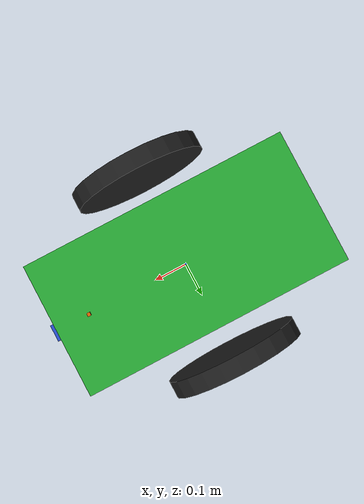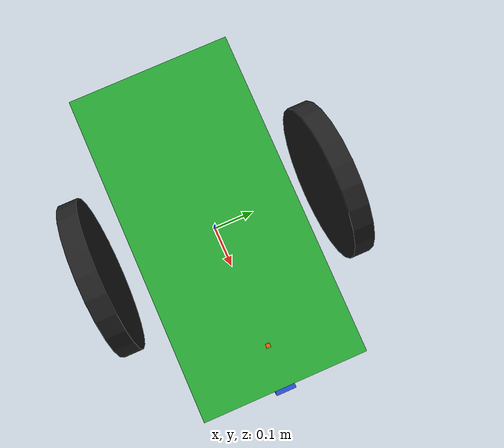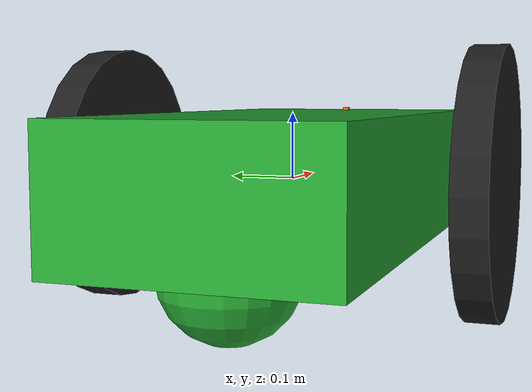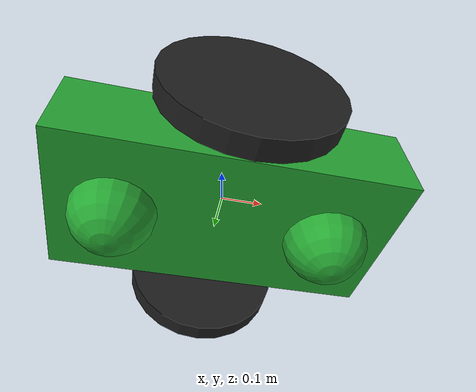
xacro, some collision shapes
<?xml version='1.0'?>

<robot name="my_robot" xmlns:xacro="http://www.ros.org/wiki/xacro">
  <xacro:include filename="$(find my_robot)/urdf/my_robot.gazebo" />
  <link name="robot_footprint"></link>

  <joint name="robot_footprint_joint" type="fixed">
    <origin xyz="0 0 0" rpy="0 0 0" />
    <parent link="robot_footprint"/>
    <child link="chassis" />
  </joint>

  <link name='chassis'>
    <pose>0 0 0.1 0 0 0</pose>

    <inertial>
      <mass value="30.0"/>
      <origin xyz="0.0 0 0" rpy=" 0 0 0"/>
      <inertia
          ixx="0.1" ixy="0" ixz="0"
          iyy="0.1" iyz="0"
          izz="0.1"
      />
    </inertial>

    <collision name='collision'>
      <origin xyz="0 0 0" rpy=" 0 0 0"/>
      <geometry>
        <box size=".8 .4 .2"/>
      </geometry>
    </collision>

    <visual name='chassis_visual'>
      <origin xyz="0 0 0" rpy=" 0 0 0"/>
      <geometry>
        <box size=".8 .4 .2"/>
      </geometry>
    </visual>

    <collision name='back_caster_collision'>
      <origin xyz="-0.25 0 -0.1" rpy=" 0 0 0"/>
      <geometry>
        <sphere radius="0.0998"/>
      </geometry>
    </collision>

    <visual name='back_caster_visual'>
      <origin xyz="-0.25 0 -0.1" rpy=" 0 0 0"/>
      <geometry>
        <sphere radius="0.1"/>
      </geometry>
    </visual>

    <collision name='front_caster_collision'>
      <origin xyz="0.25 0 -0.1" rpy=" 0 0 0"/>
      <geometry>
        <sphere radius="0.0998"/>
      </geometry>
    </collision>

    <visual name='front_caster_visual'>
      <origin xyz="0.25 0 -0.1" rpy=" 0 0 0"/>
      <geometry>
        <sphere radius="0.1"/>
      </geometry>
    </visual>

  </link>

  <link name='left_wheel'>
    <pose>0 0 0.8 0 0 0</pose>

    <inertial>
      <mass value="5"/>
      <origin xyz="0.0 0 0" rpy=" 0 0 0"/>
      <inertia
          ixx="0.1" ixy="0" ixz="0"
          iyy="0.1" iyz="0"
          izz="0.1"
      />
    </inertial>

    <collision name='collision'>
      <origin xyz="0 0 0" rpy=" 0 1.5707 1.5707"/>
      <geometry>
        <cylinder radius="0.2" length="0.05"/>
      </geometry>
    </collision>

    <visual name='left_wheel_visual'>
      <origin xyz="0 0 0" rpy=" 0 1.5707 1.5707"/>
      <geometry>
        <cylinder radius="0.2" length="0.05"/>
      </geometry>
    </visual>

  </link>

  <joint type="continuous" name="left_wheel_hinge">
    <origin xyz="0 0.30 0" rpy="0 0 0"/>
    <child link="left_wheel"/>
    <parent link="chassis"/>
    <axis xyz="0 1 0" rpy="0 0 0"/>
    <limit effort="10000" velocity="1000"/>
    <dynamics damping="1.0" friction="1.0"/>
  </joint>

  <link name='right_wheel'>
    <pose>0 0 0.8 0 0 0</pose>

    <inertial>
      <mass value="5"/>
      <origin xyz="0.0 0 0" rpy=" 0 0 0"/>
      <inertia
          ixx="0.1" ixy="0" ixz="0"
          iyy="0.1" iyz="0"
          izz="0.1"
      />
    </inertial>

    <collision name='collision'>
      <origin xyz="0 0 0" rpy=" 0 1.5707 1.5707"/>
      <geometry>
        <cylinder radius="0.2" length="0.05"/>
      </geometry>
    </collision>

    <visual name='right_wheel_visual'>
      <origin xyz="0 0 0" rpy=" 0 1.5707 1.5707"/>
      <geometry>
        <cylinder radius="0.2" length="0.05"/>
      </geometry>
    </visual>

  </link>

  <joint type="continuous" name="right_wheel_hinge">
    <origin xyz="0 -0.30 0" rpy="0 0 0"/>
    <child link="right_wheel"/>
    <parent link="chassis"/>
    <axis xyz="0 1 0" rpy="0 0 0"/>
    <limit effort="10000" velocity="1000"/>
    <dynamics damping="1.0" friction="1.0"/>
  </joint>

  <link name='camera'>
    <pose>0 0 0 0 0 0</pose>

    <inertial>
      <mass value="0.1"/>
      <origin xyz="0.0 0 0" rpy=" 0 0 0"/>
      <box_inertia m="0.1" x="0.05" y="0.05" z="0.05"/>
      <inertia
          ixx="1e-6" ixy="0" ixz="0"
          iyy="1e-6" iyz="0"
          izz="1e-6"
      />
    </inertial>

    <collision name='collision'>
      <origin xyz="0 0 0" rpy=" 0 0 0"/>
      <geometry>
        <box size=".05 .05 .05"/>
      </geometry>
    </collision>

    <visual name='camera_visual'>
      <origin xyz="0 0 0" rpy=" 0 0 0"/>
      <geometry>
        <box size=".05 .05 .05"/>
      </geometry>
    </visual>

  </link>

  <joint type="fixed" name="camera_joint">
    <origin xyz="0.4 0 0" rpy="0 0 0"/>
    <child link="camera"/>
    <parent link="chassis"/>
    <axis xyz="0 1 0" rpy="0 0 0"/>
  </joint>

  <!-- Lidar -->
  <link name='hokuyo'>
    <pose>0 0 0 0 0 0</pose>

    <inertial>
      <mass value="1e-5"/>
      <origin xyz="0.0 0 0" rpy=" 0 0 0"/>
      <inertia
          ixx="1e-6" ixy="0" ixz="0"
          iyy="1e-6" iyz="0"
          izz="1e-6"
      />
    </inertial>

    <collision name='collision'>
      <origin xyz="0 0 0" rpy=" 0 0 0"/>
      <geometry>
        <box size=".01 .01 .01"/>
      </geometry>
    </collision>

    <visual name='hokuyo_visual'>
      <origin xyz="0 0 0" rpy=" 0 0 0"/>
      <geometry>
        <mesh filename="package://my_robot/meshes/hokuyo.dae"/>
      </geometry>
    </visual>

  </link>

  <joint type="fixed" name="hokuyo_joint">
    <origin xyz="0.30 0 .1" rpy="0 0 0"/>
    <child link="hokuyo"/>
    <parent link="chassis"/>
    <axis xyz="0 1 0" rpy="0 0 0"/>
  </joint>

  <!-- added to comply with RTAB package -->
  <joint name="camera_optical_joint" type="fixed">
    <origin xyz="0 0 0" rpy="-1.5707 0 -1.5707"/>
    <parent link="camera"/>
    <child link="camera_link_optical"/>
  </joint>

<!-- Camera Link Optical -->
  <link name="camera_link_optical">
  </link>

<!-- Styling -->
<gazebo reference="left_wheel">
    <material>Gazebo/Black</material>
</gazebo>
<gazebo reference="right_wheel">
    <material>Gazebo/Black</material>
</gazebo>
<gazebo reference="chassis">
    <material>Gazebo/Green</material>
</gazebo>
<gazebo reference="camera">
    <material>Gazebo/Blue</material>
</gazebo>
</robot>
